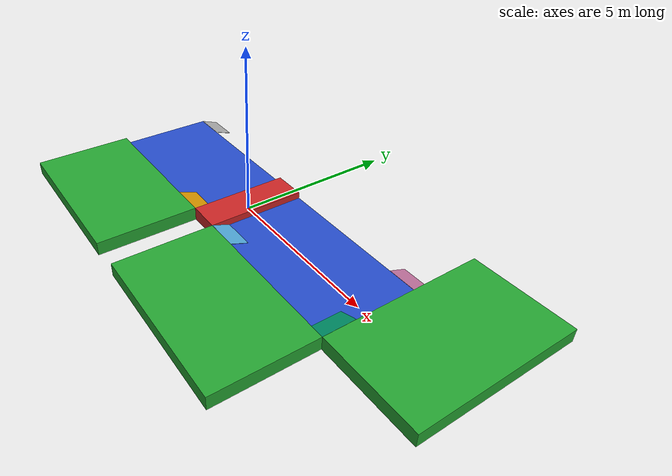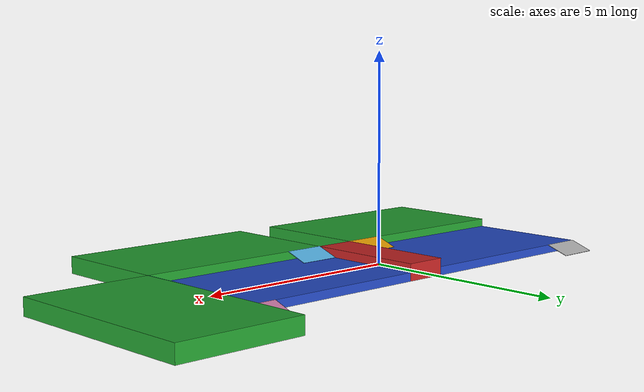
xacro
<?xml version="1.0"?>
<robot name="platform" xmlns:xacro="http://www.ros.org/wiki/xacro">
    <xacro:property name="A"        value="3.0" />
    <xacro:property name="B"        value="5.0" />
    <xacro:property name="C"        value="1.0" />
    <xacro:property name="C_O"      value="0.2" />
    <xacro:property name="alpha"    value="${20*pi/180}" />
    <xacro:property name="x_adj"    value="0.6" />
    <xacro:property name="y_adj"    value="0.6" />
    <link name="base_link">
        <visual>
            <origin xyz="0 0 ${C_O/2}" />
            <geometry>
                <box size="${C} ${A} ${2*C_O}" />
            </geometry>
        </visual>
        <collision>
            <origin xyz="0 0 ${C_O/2}" />
            <geometry>
                <box size="${C} ${A} ${2*C_O}" />
            </geometry>
        </collision>
    </link>
    <link name="B_link">
        <inertial>
            <origin xyz="0 0 0" />
            <mass value="5.0" />
            <inertia  ixx="1.0" ixy="0.0"  ixz="0.0"  iyy="100.0"  iyz="0.0"  izz="1.0" />
        </inertial>
        <visual>
            <origin xyz="0 0 0" />
            <geometry>
                <box size="${B} ${A} ${C_O}" />
            </geometry>
        </visual>
        <collision>
            <origin xyz="0 0 0" />
            <geometry>
                <box size="${B} ${A} ${C_O}" />
            </geometry>
        </collision>
    </link>
    <joint name="AB_joint" type="fixed">
        <origin xyz="${-(C+B)/2} 0 0" rpy="0.0 0.0 0.0"/>
        <parent link="base_link"/>
        <child link="B_link"/>
        <axis xyz="0.0 0.0 0.0"/>
    </joint>
    <link name="C_link">
        <inertial>
            <origin xyz="0 0 0" />
            <mass value="5.0" />
            <inertia  ixx="1.0" ixy="0.0"  ixz="0.0"  iyy="100.0"  iyz="0.0"  izz="1.0" />
        </inertial>
        <visual>
            <origin xyz="0 0 0" />
            <geometry>
                <box size="${B} ${A} ${C_O}" />
            </geometry>
        </visual>
        <collision>
            <origin xyz="0 0 0" />
            <geometry>
                <box size="${B} ${A} ${C_O}" />
            </geometry>
        </collision>
    </link>
    <joint name="AC_joint" type="fixed">
        <origin xyz="${(C+B)/2} 0 0" rpy="0.0 0.0 0.0"/>
        <parent link="base_link"/>
        <child link="C_link"/>
        <axis xyz="0.0 0.0 0.0"/>
    </joint>
    <link name="D_link">
        <inertial>
            <origin xyz="0 0 0" />
            <mass value="5.0" />
            <inertia  ixx="1.0" ixy="0.0"  ixz="0.0"  iyy="100.0"  iyz="0.0"  izz="1.0" />
        </inertial>
        <visual>
            <origin xyz="0 0 0" />
            <geometry>
                <box size="${B} ${A} ${2*C_O}" />
            </geometry>
        </visual>
        <collision>
            <origin xyz="0 0 0" />
            <geometry>
                <box size="${B} ${A} ${2*C_O}" />
            </geometry>
        </collision>
    </link>
    <joint name="BD_joint" type="fixed">
        <origin xyz="0 ${-A} ${C_O/2}" rpy="0.0 0.0 0.0"/>
        <parent link="B_link"/>
        <child link="D_link"/>
        <axis xyz="0.0 0.0 0.0"/>
    </joint>
    <link name="E_link">
        <inertial>
            <origin xyz="0 0 0" />
            <mass value="5.0" />
            <inertia  ixx="1.0" ixy="0.0"  ixz="0.0"  iyy="100.0"  iyz="0.0"  izz="1.0" />
        </inertial>
        <visual>
            <origin xyz="0 0 0" />
            <geometry>
                <box size="${B} ${A} ${2*C_O}" />
            </geometry>
        </visual>
        <collision>
            <origin xyz="0 0 0" />
            <geometry>
                <box size="${B} ${A} ${2*C_O}" />
            </geometry>
        </collision>
    </link>
    <joint name="CE_joint" type="fixed">
        <origin xyz="0 ${-A} ${C_O/2}" rpy="0.0 0.0 0.0"/>
        <parent link="C_link"/>
        <child link="E_link"/>
        <axis xyz="0.0 0.0 0.0"/>
    </joint>
    <link name="F_link">
        <inertial>
            <origin xyz="0 0 0" />
            <mass value="5.0" />
            <inertia  ixx="1.0" ixy="0.0"  ixz="0.0"  iyy="100.0"  iyz="0.0"  izz="1.0" />
        </inertial>
        <visual>
            <origin xyz="0 0 0" />
            <geometry>
                <box size="${A} ${B} ${2*C_O}" />
            </geometry>
        </visual>
        <collision>
            <origin xyz="0 0 0" />
            <geometry>
                <box size="${A} ${B} ${2*C_O}" />
            </geometry>
        </collision>
    </link>
    <joint name="CF_joint" type="fixed">
        <origin xyz="${(A+B)/2} ${(B-A)/2} ${C_O/2}" rpy="0.0 0.0 0.0"/>
        <parent link="C_link"/>
        <child link="F_link"/>
        <axis xyz="0.0 0.0 0.0"/>
    </joint>

    <link name="AC_ramp_link">
        <inertial>
            <origin xyz="0 0 0" />
            <mass value="5.0" />
            <inertia  ixx="1.0" ixy="0.0"  ixz="0.0"  iyy="100.0"  iyz="0.0"  izz="1.0" />
        </inertial>
        <visual>
            <origin xyz="0 0 0" />
            <geometry>
                <box size="${C} ${C_O/sin(alpha)} 0.01" />
            </geometry>
        </visual>
        <collision>
            <origin xyz="0 0 0" />
            <geometry>
                <box size="${C} ${C_O/sin(alpha)} 0.01" />
            </geometry>
        </collision>
    </link>
    <joint name="AC_ramp_joint" type="fixed">
        <origin xyz="${B} ${A/2 + 0.5*C_O/tan(alpha)} 0" rpy="${-alpha} 0.0 0.0"/>
        <parent link="base_link"/>
        <child link="AC_ramp_link"/>
        <axis xyz="0.0 0.0 0.0"/>
    </joint>
    <link name="AB_ramp_link">
        <inertial>
            <origin xyz="0 0 0" />
            <mass value="5.0" />
            <inertia  ixx="1.0" ixy="0.0"  ixz="0.0"  iyy="100.0"  iyz="0.0"  izz="1.0" />
        </inertial>
        <visual>
            <origin xyz="0 0 0" />
            <geometry>
                <box size="${C} ${C_O/sin(alpha)} 0.01" />
            </geometry>
        </visual>
        <collision>
            <origin xyz="0 0 0" />
            <geometry>
                <box size="${C} ${C_O/sin(alpha)} 0.01" />
            </geometry>
        </collision>
    </link>
    <joint name="AB_ramp_joint" type="fixed">
        <origin xyz="${-B} ${A/2 + 0.5*C_O/tan(alpha)} 0" rpy="${-alpha} 0.0 0.0"/>
        <parent link="base_link"/>
        <child link="AB_ramp_link"/>
        <axis xyz="0.0 0.0 0.0"/>
    </joint>
    <link name="BD_ramp_link">
        <inertial>
            <origin xyz="0 0 0" />
            <mass value="5.0" />
            <inertia  ixx="1.0" ixy="0.0"  ixz="0.0"  iyy="100.0"  iyz="0.0"  izz="1.0" />
        </inertial>
        <visual>
            <origin xyz="0 0 0" />
            <geometry>
                <box size="${C} ${C_O/sin(alpha)} 0.01" />
            </geometry>
        </visual>
        <collision>
            <origin xyz="0 0 0" />
            <geometry>
                <box size="${C} ${C_O/sin(alpha)} 0.01" />
            </geometry>
        </collision>
    </link>
    <joint name="BD_ramp_joint" type="fixed">
        <origin xyz="${(B-C)/2} ${-A/2 + 0.5*C_O/tan(alpha)} ${C_O}" rpy="${-alpha} 0.0 0.0"/>
        <parent link="B_link"/>
        <child link="BD_ramp_link"/>
        <axis xyz="0.0 0.0 0.0"/>
    </joint>
    <link name="CE_ramp_link">
        <inertial>
            <origin xyz="0 0 0" />
            <mass value="5.0" />
            <inertia  ixx="1.0" ixy="0.0"  ixz="0.0"  iyy="100.0"  iyz="0.0"  izz="1.0" />
        </inertial>
        <visual>
            <origin xyz="0 0 0" />
            <geometry>
                <box size="${C} ${C_O/sin(alpha)} 0.01" />
            </geometry>
        </visual>
        <collision>
            <origin xyz="0 0 0" />
            <geometry>
                <box size="${C} ${C_O/sin(alpha)} 0.01" />
            </geometry>
        </collision>
    </link>
    <joint name="CE_ramp_joint" type="fixed">
        <origin xyz="${-(B-C)/2} ${-A/2 + 0.5*C_O/tan(alpha)} ${C_O}" rpy="${-alpha} 0.0 0.0"/>
        <parent link="C_link"/>
        <child link="CE_ramp_link"/>
        <axis xyz="0.0 0.0 0.0"/>
    </joint>
    <link name="CF_ramp_link">
        <inertial>
            <origin xyz="0 0 0" />
            <mass value="5.0" />
            <inertia  ixx="1.0" ixy="0.0"  ixz="0.0"  iyy="100.0"  iyz="0.0"  izz="1.0" />
        </inertial>
        <visual>
            <origin xyz="0 0 0" rpy="${-alpha} 0.0 0.0"/>
            <geometry>
                <box size="${C} ${C_O/sin(alpha)} 0.01" />
            </geometry>
        </visual>
        <collision>
            <origin xyz="0 0 0"  rpy="${-alpha} 0.0 0.0"/>
            <geometry>
                <box size="${C} ${C_O/sin(alpha)} 0.01" />
            </geometry>
        </collision>
    </link>
    <joint name="CF_ramp_joint" type="fixed">
        <origin xyz="${B/2 - 0.5*C_O/tan(alpha)} ${-(A-C)/2} ${C_O}" rpy="0.0 0.0 ${pi/2}"/>
        <parent link="C_link"/>
        <child link="CF_ramp_link"/>
        <axis xyz="0.0 0.0 0.0"/>
    </joint>

    <gazebo reference="base_link">
        <material>Gazebo/Red</material>
    </gazebo>
    <gazebo reference="B_link">
        <material>Gazebo/Blue</material>
    </gazebo>
    <gazebo reference="C_link">
        <material>Gazebo/Blue</material>
    </gazebo>
    <gazebo reference="D_link">
        <material>Gazebo/Green</material>
    </gazebo>
    <gazebo reference="E_link">
        <material>Gazebo/Green</material>
    </gazebo>
    <gazebo reference="F_link">
        <material>Gazebo/Green</material>
    </gazebo>
</robot>
